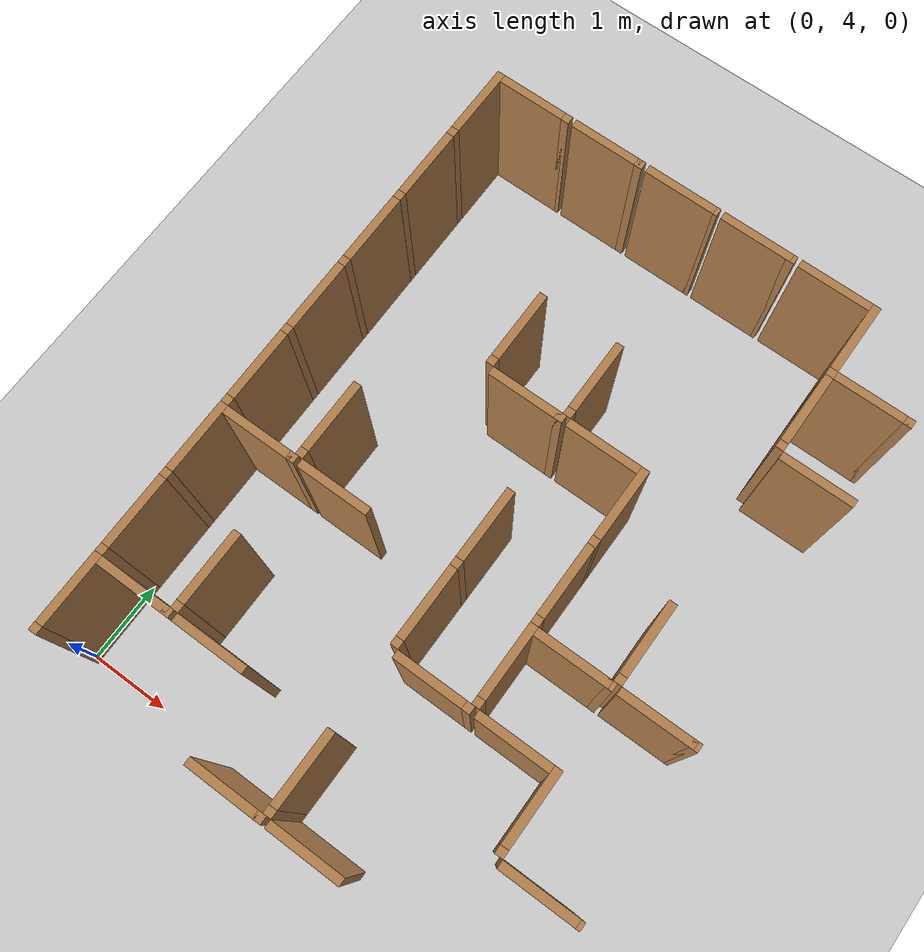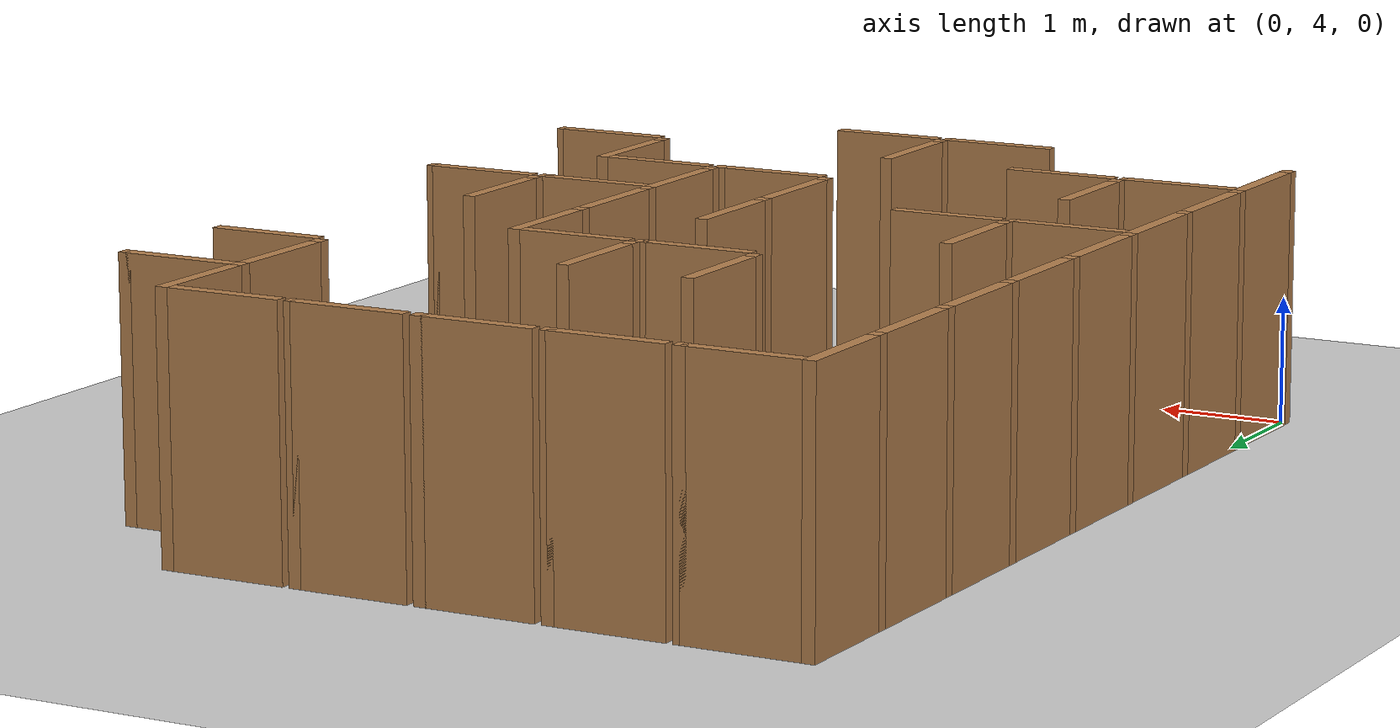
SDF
<sdf version="1.6">
 <world name="default">
  <include><uri>model://sun</uri></include>
  <model name="ground_plane">
   <static>true</static>
   <link name="link">
    <collision name="collision"><geometry><plane><size>12.0 12.0</size></plane></geometry></collision>
    <visual name="visual">
     <cast_shadows>false</cast_shadows>
     <geometry><plane><size>12.0 12.0</size></plane></geometry>
     <material>
      <script><uri>file://media/materials/scripts/gazebo.material</uri><name>Gazebo/Grey</name></script>
     </material>
    </visual>
   </link>
   <pose>6.0 6.0 0 0 0 0</pose>
  </model>
  <model name="vwall_4_0">
   <pose>0.0 4.5 1.0 0 0 0</pose>
   <link name="link">
    <collision name="collision"><geometry><box><size>0.1 0.9 2</size></box></geometry></collision>
    <visual name="visual">
     <geometry><box><size>0.1 0.9 2</size></box></geometry>
     <material>
      <script><uri>file://media/materials/scripts/gazebo.material</uri><name>Gazebo/Wood</name></script>
     </material>
    </visual>
   </link>
  </model>
  <model name="joint_0.0_-4.0">
   <pose>0.0 4.0 1.0 0 0 0</pose>
   <link name="link">
    <collision name="collision"><geometry><box><size>0.1 0.1 2</size></box></geometry></collision>
    <visual name="visual">
     <geometry><box><size>0.1 0.1 2</size></box></geometry>
     <material>
      <script><uri>file://media/materials/scripts/gazebo.material</uri><name>Gazebo/Wood</name></script>
     </material>
    </visual>
   </link>
  </model>
  <model name="vwall_4_3">
   <pose>3.0 4.5 1.0 0 0 0</pose>
   <link name="link">
    <collision name="collision"><geometry><box><size>0.1 0.9 2</size></box></geometry></collision>
    <visual name="visual">
     <geometry><box><size>0.1 0.9 2</size></box></geometry>
     <material>
      <script><uri>file://media/materials/scripts/gazebo.material</uri><name>Gazebo/Wood</name></script>
     </material>
    </visual>
   </link>
  </model>
  <model name="joint_3.0_-4.0">
   <pose>3.0 4.0 1.0 0 0 0</pose>
   <link name="link">
    <collision name="collision"><geometry><box><size>0.1 0.1 2</size></box></geometry></collision>
    <visual name="visual">
     <geometry><box><size>0.1 0.1 2</size></box></geometry>
     <material>
      <script><uri>file://media/materials/scripts/gazebo.material</uri><name>Gazebo/Wood</name></script>
     </material>
    </visual>
   </link>
  </model>
  <model name="vwall_5_0">
   <pose>0.0 5.5 1.0 0 0 0</pose>
   <link name="link">
    <collision name="collision"><geometry><box><size>0.1 0.9 2</size></box></geometry></collision>
    <visual name="visual">
     <geometry><box><size>0.1 0.9 2</size></box></geometry>
     <material>
      <script><uri>file://media/materials/scripts/gazebo.material</uri><name>Gazebo/Wood</name></script>
     </material>
    </visual>
   </link>
  </model>
  <model name="joint_0.0_-5.0">
   <pose>0.0 5.0 1.0 0 0 0</pose>
   <link name="link">
    <collision name="collision"><geometry><box><size>0.1 0.1 2</size></box></geometry></collision>
    <visual name="visual">
     <geometry><box><size>0.1 0.1 2</size></box></geometry>
     <material>
      <script><uri>file://media/materials/scripts/gazebo.material</uri><name>Gazebo/Wood</name></script>
     </material>
    </visual>
   </link>
  </model>
  <model name="vwall_5_1">
   <pose>1.0 5.5 1.0 0 0 0</pose>
   <link name="link">
    <collision name="collision"><geometry><box><size>0.1 0.9 2</size></box></geometry></collision>
    <visual name="visual">
     <geometry><box><size>0.1 0.9 2</size></box></geometry>
     <material>
      <script><uri>file://media/materials/scripts/gazebo.material</uri><name>Gazebo/Wood</name></script>
     </material>
    </visual>
   </link>
  </model>
  <model name="joint_1.0_-5.0">
   <pose>1.0 5.0 1.0 0 0 0</pose>
   <link name="link">
    <collision name="collision"><geometry><box><size>0.1 0.1 2</size></box></geometry></collision>
    <visual name="visual">
     <geometry><box><size>0.1 0.1 2</size></box></geometry>
     <material>
      <script><uri>file://media/materials/scripts/gazebo.material</uri><name>Gazebo/Wood</name></script>
     </material>
    </visual>
   </link>
  </model>
  <model name="vwall_5_5">
   <pose>5.0 5.5 1.0 0 0 0</pose>
   <link name="link">
    <collision name="collision"><geometry><box><size>0.1 0.9 2</size></box></geometry></collision>
    <visual name="visual">
     <geometry><box><size>0.1 0.9 2</size></box></geometry>
     <material>
      <script><uri>file://media/materials/scripts/gazebo.material</uri><name>Gazebo/Wood</name></script>
     </material>
    </visual>
   </link>
  </model>
  <model name="joint_5.0_-5.0">
   <pose>5.0 5.0 1.0 0 0 0</pose>
   <link name="link">
    <collision name="collision"><geometry><box><size>0.1 0.1 2</size></box></geometry></collision>
    <visual name="visual">
     <geometry><box><size>0.1 0.1 2</size></box></geometry>
     <material>
      <script><uri>file://media/materials/scripts/gazebo.material</uri><name>Gazebo/Wood</name></script>
     </material>
    </visual>
   </link>
  </model>
  <model name="vwall_6_0">
   <pose>0.0 6.5 1.0 0 0 0</pose>
   <link name="link">
    <collision name="collision"><geometry><box><size>0.1 0.9 2</size></box></geometry></collision>
    <visual name="visual">
     <geometry><box><size>0.1 0.9 2</size></box></geometry>
     <material>
      <script><uri>file://media/materials/scripts/gazebo.material</uri><name>Gazebo/Wood</name></script>
     </material>
    </visual>
   </link>
  </model>
  <model name="joint_0.0_-6.0">
   <pose>0.0 6.0 1.0 0 0 0</pose>
   <link name="link">
    <collision name="collision"><geometry><box><size>0.1 0.1 2</size></box></geometry></collision>
    <visual name="visual">
     <geometry><box><size>0.1 0.1 2</size></box></geometry>
     <material>
      <script><uri>file://media/materials/scripts/gazebo.material</uri><name>Gazebo/Wood</name></script>
     </material>
    </visual>
   </link>
  </model>
  <model name="vwall_6_3">
   <pose>3.0 6.5 1.0 0 0 0</pose>
   <link name="link">
    <collision name="collision"><geometry><box><size>0.1 0.9 2</size></box></geometry></collision>
    <visual name="visual">
     <geometry><box><size>0.1 0.9 2</size></box></geometry>
     <material>
      <script><uri>file://media/materials/scripts/gazebo.material</uri><name>Gazebo/Wood</name></script>
     </material>
    </visual>
   </link>
  </model>
  <model name="joint_3.0_-6.0">
   <pose>3.0 6.0 1.0 0 0 0</pose>
   <link name="link">
    <collision name="collision"><geometry><box><size>0.1 0.1 2</size></box></geometry></collision>
    <visual name="visual">
     <geometry><box><size>0.1 0.1 2</size></box></geometry>
     <material>
      <script><uri>file://media/materials/scripts/gazebo.material</uri><name>Gazebo/Wood</name></script>
     </material>
    </visual>
   </link>
  </model>
  <model name="vwall_6_4">
   <pose>4.0 6.5 1.0 0 0 0</pose>
   <link name="link">
    <collision name="collision"><geometry><box><size>0.1 0.9 2</size></box></geometry></collision>
    <visual name="visual">
     <geometry><box><size>0.1 0.9 2</size></box></geometry>
     <material>
      <script><uri>file://media/materials/scripts/gazebo.material</uri><name>Gazebo/Wood</name></script>
     </material>
    </visual>
   </link>
  </model>
  <model name="joint_4.0_-6.0">
   <pose>4.0 6.0 1.0 0 0 0</pose>
   <link name="link">
    <collision name="collision"><geometry><box><size>0.1 0.1 2</size></box></geometry></collision>
    <visual name="visual">
     <geometry><box><size>0.1 0.1 2</size></box></geometry>
     <material>
      <script><uri>file://media/materials/scripts/gazebo.material</uri><name>Gazebo/Wood</name></script>
     </material>
    </visual>
   </link>
  </model>
  <model name="vwall_7_0">
   <pose>0.0 7.5 1.0 0 0 0</pose>
   <link name="link">
    <collision name="collision"><geometry><box><size>0.1 0.9 2</size></box></geometry></collision>
    <visual name="visual">
     <geometry><box><size>0.1 0.9 2</size></box></geometry>
     <material>
      <script><uri>file://media/materials/scripts/gazebo.material</uri><name>Gazebo/Wood</name></script>
     </material>
    </visual>
   </link>
  </model>
  <model name="joint_0.0_-7.0">
   <pose>0.0 7.0 1.0 0 0 0</pose>
   <link name="link">
    <collision name="collision"><geometry><box><size>0.1 0.1 2</size></box></geometry></collision>
    <visual name="visual">
     <geometry><box><size>0.1 0.1 2</size></box></geometry>
     <material>
      <script><uri>file://media/materials/scripts/gazebo.material</uri><name>Gazebo/Wood</name></script>
     </material>
    </visual>
   </link>
  </model>
  <model name="vwall_7_1">
   <pose>1.0 7.5 1.0 0 0 0</pose>
   <link name="link">
    <collision name="collision"><geometry><box><size>0.1 0.9 2</size></box></geometry></collision>
    <visual name="visual">
     <geometry><box><size>0.1 0.9 2</size></box></geometry>
     <material>
      <script><uri>file://media/materials/scripts/gazebo.material</uri><name>Gazebo/Wood</name></script>
     </material>
    </visual>
   </link>
  </model>
  <model name="joint_1.0_-7.0">
   <pose>1.0 7.0 1.0 0 0 0</pose>
   <link name="link">
    <collision name="collision"><geometry><box><size>0.1 0.1 2</size></box></geometry></collision>
    <visual name="visual">
     <geometry><box><size>0.1 0.1 2</size></box></geometry>
     <material>
      <script><uri>file://media/materials/scripts/gazebo.material</uri><name>Gazebo/Wood</name></script>
     </material>
    </visual>
   </link>
  </model>
  <model name="vwall_7_3">
   <pose>3.0 7.5 1.0 0 0 0</pose>
   <link name="link">
    <collision name="collision"><geometry><box><size>0.1 0.9 2</size></box></geometry></collision>
    <visual name="visual">
     <geometry><box><size>0.1 0.9 2</size></box></geometry>
     <material>
      <script><uri>file://media/materials/scripts/gazebo.material</uri><name>Gazebo/Wood</name></script>
     </material>
    </visual>
   </link>
  </model>
  <model name="joint_3.0_-7.0">
   <pose>3.0 7.0 1.0 0 0 0</pose>
   <link name="link">
    <collision name="collision"><geometry><box><size>0.1 0.1 2</size></box></geometry></collision>
    <visual name="visual">
     <geometry><box><size>0.1 0.1 2</size></box></geometry>
     <material>
      <script><uri>file://media/materials/scripts/gazebo.material</uri><name>Gazebo/Wood</name></script>
     </material>
    </visual>
   </link>
  </model>
  <model name="vwall_7_4">
   <pose>4.0 7.5 1.0 0 0 0</pose>
   <link name="link">
    <collision name="collision"><geometry><box><size>0.1 0.9 2</size></box></geometry></collision>
    <visual name="visual">
     <geometry><box><size>0.1 0.9 2</size></box></geometry>
     <material>
      <script><uri>file://media/materials/scripts/gazebo.material</uri><name>Gazebo/Wood</name></script>
     </material>
    </visual>
   </link>
  </model>
  <model name="joint_4.0_-7.0">
   <pose>4.0 7.0 1.0 0 0 0</pose>
   <link name="link">
    <collision name="collision"><geometry><box><size>0.1 0.1 2</size></box></geometry></collision>
    <visual name="visual">
     <geometry><box><size>0.1 0.1 2</size></box></geometry>
     <material>
      <script><uri>file://media/materials/scripts/gazebo.material</uri><name>Gazebo/Wood</name></script>
     </material>
    </visual>
   </link>
  </model>
  <model name="vwall_7_5">
   <pose>5.0 7.5 1.0 0 0 0</pose>
   <link name="link">
    <collision name="collision"><geometry><box><size>0.1 0.9 2</size></box></geometry></collision>
    <visual name="visual">
     <geometry><box><size>0.1 0.9 2</size></box></geometry>
     <material>
      <script><uri>file://media/materials/scripts/gazebo.material</uri><name>Gazebo/Wood</name></script>
     </material>
    </visual>
   </link>
  </model>
  <model name="joint_5.0_-7.0">
   <pose>5.0 7.0 1.0 0 0 0</pose>
   <link name="link">
    <collision name="collision"><geometry><box><size>0.1 0.1 2</size></box></geometry></collision>
    <visual name="visual">
     <geometry><box><size>0.1 0.1 2</size></box></geometry>
     <material>
      <script><uri>file://media/materials/scripts/gazebo.material</uri><name>Gazebo/Wood</name></script>
     </material>
    </visual>
   </link>
  </model>
  <model name="vwall_8_0">
   <pose>0.0 8.5 1.0 0 0 0</pose>
   <link name="link">
    <collision name="collision"><geometry><box><size>0.1 0.9 2</size></box></geometry></collision>
    <visual name="visual">
     <geometry><box><size>0.1 0.9 2</size></box></geometry>
     <material>
      <script><uri>file://media/materials/scripts/gazebo.material</uri><name>Gazebo/Wood</name></script>
     </material>
    </visual>
   </link>
  </model>
  <model name="joint_0.0_-8.0">
   <pose>0.0 8.0 1.0 0 0 0</pose>
   <link name="link">
    <collision name="collision"><geometry><box><size>0.1 0.1 2</size></box></geometry></collision>
    <visual name="visual">
     <geometry><box><size>0.1 0.1 2</size></box></geometry>
     <material>
      <script><uri>file://media/materials/scripts/gazebo.material</uri><name>Gazebo/Wood</name></script>
     </material>
    </visual>
   </link>
  </model>
  <model name="vwall_8_4">
   <pose>4.0 8.5 1.0 0 0 0</pose>
   <link name="link">
    <collision name="collision"><geometry><box><size>0.1 0.9 2</size></box></geometry></collision>
    <visual name="visual">
     <geometry><box><size>0.1 0.9 2</size></box></geometry>
     <material>
      <script><uri>file://media/materials/scripts/gazebo.material</uri><name>Gazebo/Wood</name></script>
     </material>
    </visual>
   </link>
  </model>
  <model name="joint_4.0_-8.0">
   <pose>4.0 8.0 1.0 0 0 0</pose>
   <link name="link">
    <collision name="collision"><geometry><box><size>0.1 0.1 2</size></box></geometry></collision>
    <visual name="visual">
     <geometry><box><size>0.1 0.1 2</size></box></geometry>
     <material>
      <script><uri>file://media/materials/scripts/gazebo.material</uri><name>Gazebo/Wood</name></script>
     </material>
    </visual>
   </link>
  </model>
  <model name="vwall_9_0">
   <pose>0.0 9.5 1.0 0 0 0</pose>
   <link name="link">
    <collision name="collision"><geometry><box><size>0.1 0.9 2</size></box></geometry></collision>
    <visual name="visual">
     <geometry><box><size>0.1 0.9 2</size></box></geometry>
     <material>
      <script><uri>file://media/materials/scripts/gazebo.material</uri><name>Gazebo/Wood</name></script>
     </material>
    </visual>
   </link>
  </model>
  <model name="joint_0.0_-9.0">
   <pose>0.0 9.0 1.0 0 0 0</pose>
   <link name="link">
    <collision name="collision"><geometry><box><size>0.1 0.1 2</size></box></geometry></collision>
    <visual name="visual">
     <geometry><box><size>0.1 0.1 2</size></box></geometry>
     <material>
      <script><uri>file://media/materials/scripts/gazebo.material</uri><name>Gazebo/Wood</name></script>
     </material>
    </visual>
   </link>
  </model>
  <model name="vwall_9_2">
   <pose>2.0 9.5 1.0 0 0 0</pose>
   <link name="link">
    <collision name="collision"><geometry><box><size>0.1 0.9 2</size></box></geometry></collision>
    <visual name="visual">
     <geometry><box><size>0.1 0.9 2</size></box></geometry>
     <material>
      <script><uri>file://media/materials/scripts/gazebo.material</uri><name>Gazebo/Wood</name></script>
     </material>
    </visual>
   </link>
  </model>
  <model name="joint_2.0_-9.0">
   <pose>2.0 9.0 1.0 0 0 0</pose>
   <link name="link">
    <collision name="collision"><geometry><box><size>0.1 0.1 2</size></box></geometry></collision>
    <visual name="visual">
     <geometry><box><size>0.1 0.1 2</size></box></geometry>
     <material>
      <script><uri>file://media/materials/scripts/gazebo.material</uri><name>Gazebo/Wood</name></script>
     </material>
    </visual>
   </link>
  </model>
  <model name="vwall_9_3">
   <pose>3.0 9.5 1.0 0 0 0</pose>
   <link name="link">
    <collision name="collision"><geometry><box><size>0.1 0.9 2</size></box></geometry></collision>
    <visual name="visual">
     <geometry><box><size>0.1 0.9 2</size></box></geometry>
     <material>
      <script><uri>file://media/materials/scripts/gazebo.material</uri><name>Gazebo/Wood</name></script>
     </material>
    </visual>
   </link>
  </model>
  <model name="joint_3.0_-9.0">
   <pose>3.0 9.0 1.0 0 0 0</pose>
   <link name="link">
    <collision name="collision"><geometry><box><size>0.1 0.1 2</size></box></geometry></collision>
    <visual name="visual">
     <geometry><box><size>0.1 0.1 2</size></box></geometry>
     <material>
      <script><uri>file://media/materials/scripts/gazebo.material</uri><name>Gazebo/Wood</name></script>
     </material>
    </visual>
   </link>
  </model>
  <model name="vwall_10_0">
   <pose>0.0 10.5 1.0 0 0 0</pose>
   <link name="link">
    <collision name="collision"><geometry><box><size>0.1 0.9 2</size></box></geometry></collision>
    <visual name="visual">
     <geometry><box><size>0.1 0.9 2</size></box></geometry>
     <material>
      <script><uri>file://media/materials/scripts/gazebo.material</uri><name>Gazebo/Wood</name></script>
     </material>
    </visual>
   </link>
  </model>
  <model name="joint_0.0_-10.0">
   <pose>0.0 10.0 1.0 0 0 0</pose>
   <link name="link">
    <collision name="collision"><geometry><box><size>0.1 0.1 2</size></box></geometry></collision>
    <visual name="visual">
     <geometry><box><size>0.1 0.1 2</size></box></geometry>
     <material>
      <script><uri>file://media/materials/scripts/gazebo.material</uri><name>Gazebo/Wood</name></script>
     </material>
    </visual>
   </link>
  </model>
  <model name="vwall_10_5">
   <pose>5.0 10.5 1.0 0 0 0</pose>
   <link name="link">
    <collision name="collision"><geometry><box><size>0.1 0.9 2</size></box></geometry></collision>
    <visual name="visual">
     <geometry><box><size>0.1 0.9 2</size></box></geometry>
     <material>
      <script><uri>file://media/materials/scripts/gazebo.material</uri><name>Gazebo/Wood</name></script>
     </material>
    </visual>
   </link>
  </model>
  <model name="joint_5.0_-10.0">
   <pose>5.0 10.0 1.0 0 0 0</pose>
   <link name="link">
    <collision name="collision"><geometry><box><size>0.1 0.1 2</size></box></geometry></collision>
    <visual name="visual">
     <geometry><box><size>0.1 0.1 2</size></box></geometry>
     <material>
      <script><uri>file://media/materials/scripts/gazebo.material</uri><name>Gazebo/Wood</name></script>
     </material>
    </visual>
   </link>
  </model>
  <model name="vwall_11_0">
   <pose>0.0 11.5 1.0 0 0 0</pose>
   <link name="link">
    <collision name="collision"><geometry><box><size>0.1 0.9 2</size></box></geometry></collision>
    <visual name="visual">
     <geometry><box><size>0.1 0.9 2</size></box></geometry>
     <material>
      <script><uri>file://media/materials/scripts/gazebo.material</uri><name>Gazebo/Wood</name></script>
     </material>
    </visual>
   </link>
  </model>
  <model name="joint_0.0_-11.0">
   <pose>0.0 11.0 1.0 0 0 0</pose>
   <link name="link">
    <collision name="collision"><geometry><box><size>0.1 0.1 2</size></box></geometry></collision>
    <visual name="visual">
     <geometry><box><size>0.1 0.1 2</size></box></geometry>
     <material>
      <script><uri>file://media/materials/scripts/gazebo.material</uri><name>Gazebo/Wood</name></script>
     </material>
    </visual>
   </link>
  </model>
  <model name="vwall_11_5">
   <pose>5.0 11.5 1.0 0 0 0</pose>
   <link name="link">
    <collision name="collision"><geometry><box><size>0.1 0.9 2</size></box></geometry></collision>
    <visual name="visual">
     <geometry><box><size>0.1 0.9 2</size></box></geometry>
     <material>
      <script><uri>file://media/materials/scripts/gazebo.material</uri><name>Gazebo/Wood</name></script>
     </material>
    </visual>
   </link>
  </model>
  <model name="joint_5.0_-11.0">
   <pose>5.0 11.0 1.0 0 0 0</pose>
   <link name="link">
    <collision name="collision"><geometry><box><size>0.1 0.1 2</size></box></geometry></collision>
    <visual name="visual">
     <geometry><box><size>0.1 0.1 2</size></box></geometry>
     <material>
      <script><uri>file://media/materials/scripts/gazebo.material</uri><name>Gazebo/Wood</name></script>
     </material>
    </visual>
   </link>
  </model>
  <model name="hwall_3_2">
   <pose>2.5 3.9 1.0 0 0 0</pose>
   <link name="link">
    <collision name="collision"><geometry><box><size>0.9 0.1 2</size></box></geometry></collision>
    <visual name="visual">
     <geometry><box><size>0.9 0.1 2</size></box></geometry>
     <material>
      <script><uri>file://media/materials/scripts/gazebo.material</uri><name>Gazebo/Wood</name></script>
     </material>
    </visual>
   </link>
  </model>
  <model name="joint_2.95_-3.9">
   <pose>2.95 3.9 1.0 0 0 0</pose>
   <link name="link">
    <collision name="collision"><geometry><box><size>0.1 0.1 2</size></box></geometry></collision>
    <visual name="visual">
     <geometry><box><size>0.1 0.1 2</size></box></geometry>
     <material>
      <script><uri>file://media/materials/scripts/gazebo.material</uri><name>Gazebo/Wood</name></script>
     </material>
    </visual>
   </link>
  </model>
  <model name="hwall_3_3">
   <pose>3.5 3.9 1.0 0 0 0</pose>
   <link name="link">
    <collision name="collision"><geometry><box><size>0.9 0.1 2</size></box></geometry></collision>
    <visual name="visual">
     <geometry><box><size>0.9 0.1 2</size></box></geometry>
     <material>
      <script><uri>file://media/materials/scripts/gazebo.material</uri><name>Gazebo/Wood</name></script>
     </material>
    </visual>
   </link>
  </model>
  <model name="hwall_4_0">
   <pose>0.5 4.9 1.0 0 0 0</pose>
   <link name="link">
    <collision name="collision"><geometry><box><size>0.9 0.1 2</size></box></geometry></collision>
    <visual name="visual">
     <geometry><box><size>0.9 0.1 2</size></box></geometry>
     <material>
      <script><uri>file://media/materials/scripts/gazebo.material</uri><name>Gazebo/Wood</name></script>
     </material>
    </visual>
   </link>
  </model>
  <model name="joint_0.95_-4.9">
   <pose>0.95 4.9 1.0 0 0 0</pose>
   <link name="link">
    <collision name="collision"><geometry><box><size>0.1 0.1 2</size></box></geometry></collision>
    <visual name="visual">
     <geometry><box><size>0.1 0.1 2</size></box></geometry>
     <material>
      <script><uri>file://media/materials/scripts/gazebo.material</uri><name>Gazebo/Wood</name></script>
     </material>
    </visual>
   </link>
  </model>
  <model name="hwall_4_1">
   <pose>1.5 4.9 1.0 0 0 0</pose>
   <link name="link">
    <collision name="collision"><geometry><box><size>0.9 0.1 2</size></box></geometry></collision>
    <visual name="visual">
     <geometry><box><size>0.9 0.1 2</size></box></geometry>
     <material>
      <script><uri>file://media/materials/scripts/gazebo.material</uri><name>Gazebo/Wood</name></script>
     </material>
    </visual>
   </link>
  </model>
  <model name="hwall_4_5">
   <pose>5.5 4.9 1.0 0 0 0</pose>
   <link name="link">
    <collision name="collision"><geometry><box><size>0.9 0.1 2</size></box></geometry></collision>
    <visual name="visual">
     <geometry><box><size>0.9 0.1 2</size></box></geometry>
     <material>
      <script><uri>file://media/materials/scripts/gazebo.material</uri><name>Gazebo/Wood</name></script>
     </material>
    </visual>
   </link>
  </model>
  <model name="joint_5.95_-4.9">
   <pose>5.95 4.9 1.0 0 0 0</pose>
   <link name="link">
    <collision name="collision"><geometry><box><size>0.1 0.1 2</size></box></geometry></collision>
    <visual name="visual">
     <geometry><box><size>0.1 0.1 2</size></box></geometry>
     <material>
      <script><uri>file://media/materials/scripts/gazebo.material</uri><name>Gazebo/Wood</name></script>
     </material>
    </visual>
   </link>
  </model>
  <model name="hwall_5_3">
   <pose>3.5 5.9 1.0 0 0 0</pose>
   <link name="link">
    <collision name="collision"><geometry><box><size>0.9 0.1 2</size></box></geometry></collision>
    <visual name="visual">
     <geometry><box><size>0.9 0.1 2</size></box></geometry>
     <material>
      <script><uri>file://media/materials/scripts/gazebo.material</uri><name>Gazebo/Wood</name></script>
     </material>
    </visual>
   </link>
  </model>
  <model name="joint_3.95_-5.9">
   <pose>3.95 5.9 1.0 0 0 0</pose>
   <link name="link">
    <collision name="collision"><geometry><box><size>0.1 0.1 2</size></box></geometry></collision>
    <visual name="visual">
     <geometry><box><size>0.1 0.1 2</size></box></geometry>
     <material>
      <script><uri>file://media/materials/scripts/gazebo.material</uri><name>Gazebo/Wood</name></script>
     </material>
    </visual>
   </link>
  </model>
  <model name="hwall_5_4">
   <pose>4.5 5.9 1.0 0 0 0</pose>
   <link name="link">
    <collision name="collision"><geometry><box><size>0.9 0.1 2</size></box></geometry></collision>
    <visual name="visual">
     <geometry><box><size>0.9 0.1 2</size></box></geometry>
     <material>
      <script><uri>file://media/materials/scripts/gazebo.material</uri><name>Gazebo/Wood</name></script>
     </material>
    </visual>
   </link>
  </model>
  <model name="hwall_6_0">
   <pose>0.5 6.9 1.0 0 0 0</pose>
   <link name="link">
    <collision name="collision"><geometry><box><size>0.9 0.1 2</size></box></geometry></collision>
    <visual name="visual">
     <geometry><box><size>0.9 0.1 2</size></box></geometry>
     <material>
      <script><uri>file://media/materials/scripts/gazebo.material</uri><name>Gazebo/Wood</name></script>
     </material>
    </visual>
   </link>
  </model>
  <model name="joint_0.95_-6.9">
   <pose>0.95 6.9 1.0 0 0 0</pose>
   <link name="link">
    <collision name="collision"><geometry><box><size>0.1 0.1 2</size></box></geometry></collision>
    <visual name="visual">
     <geometry><box><size>0.1 0.1 2</size></box></geometry>
     <material>
      <script><uri>file://media/materials/scripts/gazebo.material</uri><name>Gazebo/Wood</name></script>
     </material>
    </visual>
   </link>
  </model>
  <model name="hwall_6_1">
   <pose>1.5 6.9 1.0 0 0 0</pose>
   <link name="link">
    <collision name="collision"><geometry><box><size>0.9 0.1 2</size></box></geometry></collision>
    <visual name="visual">
     <geometry><box><size>0.9 0.1 2</size></box></geometry>
     <material>
      <script><uri>file://media/materials/scripts/gazebo.material</uri><name>Gazebo/Wood</name></script>
     </material>
    </visual>
   </link>
  </model>
  <model name="hwall_6_4">
   <pose>4.5 6.9 1.0 0 0 0</pose>
   <link name="link">
    <collision name="collision"><geometry><box><size>0.9 0.1 2</size></box></geometry></collision>
    <visual name="visual">
     <geometry><box><size>0.9 0.1 2</size></box></geometry>
     <material>
      <script><uri>file://media/materials/scripts/gazebo.material</uri><name>Gazebo/Wood</name></script>
     </material>
    </visual>
   </link>
  </model>
  <model name="joint_4.95_-6.9">
   <pose>4.95 6.9 1.0 0 0 0</pose>
   <link name="link">
    <collision name="collision"><geometry><box><size>0.1 0.1 2</size></box></geometry></collision>
    <visual name="visual">
     <geometry><box><size>0.1 0.1 2</size></box></geometry>
     <material>
      <script><uri>file://media/materials/scripts/gazebo.material</uri><name>Gazebo/Wood</name></script>
     </material>
    </visual>
   </link>
  </model>
  <model name="hwall_6_5">
   <pose>5.5 6.9 1.0 0 0 0</pose>
   <link name="link">
    <collision name="collision"><geometry><box><size>0.9 0.1 2</size></box></geometry></collision>
    <visual name="visual">
     <geometry><box><size>0.9 0.1 2</size></box></geometry>
     <material>
      <script><uri>file://media/materials/scripts/gazebo.material</uri><name>Gazebo/Wood</name></script>
     </material>
    </visual>
   </link>
  </model>
  <model name="joint_5.95_-6.9">
   <pose>5.95 6.9 1.0 0 0 0</pose>
   <link name="link">
    <collision name="collision"><geometry><box><size>0.1 0.1 2</size></box></geometry></collision>
    <visual name="visual">
     <geometry><box><size>0.1 0.1 2</size></box></geometry>
     <material>
      <script><uri>file://media/materials/scripts/gazebo.material</uri><name>Gazebo/Wood</name></script>
     </material>
    </visual>
   </link>
  </model>
  <model name="hwall_8_2">
   <pose>2.5 8.9 1.0 0 0 0</pose>
   <link name="link">
    <collision name="collision"><geometry><box><size>0.9 0.1 2</size></box></geometry></collision>
    <visual name="visual">
     <geometry><box><size>0.9 0.1 2</size></box></geometry>
     <material>
      <script><uri>file://media/materials/scripts/gazebo.material</uri><name>Gazebo/Wood</name></script>
     </material>
    </visual>
   </link>
  </model>
  <model name="joint_2.95_-8.9">
   <pose>2.95 8.9 1.0 0 0 0</pose>
   <link name="link">
    <collision name="collision"><geometry><box><size>0.1 0.1 2</size></box></geometry></collision>
    <visual name="visual">
     <geometry><box><size>0.1 0.1 2</size></box></geometry>
     <material>
      <script><uri>file://media/materials/scripts/gazebo.material</uri><name>Gazebo/Wood</name></script>
     </material>
    </visual>
   </link>
  </model>
  <model name="hwall_8_3">
   <pose>3.5 8.9 1.0 0 0 0</pose>
   <link name="link">
    <collision name="collision"><geometry><box><size>0.9 0.1 2</size></box></geometry></collision>
    <visual name="visual">
     <geometry><box><size>0.9 0.1 2</size></box></geometry>
     <material>
      <script><uri>file://media/materials/scripts/gazebo.material</uri><name>Gazebo/Wood</name></script>
     </material>
    </visual>
   </link>
  </model>
  <model name="hwall_9_5">
   <pose>5.5 9.9 1.0 0 0 0</pose>
   <link name="link">
    <collision name="collision"><geometry><box><size>0.9 0.1 2</size></box></geometry></collision>
    <visual name="visual">
     <geometry><box><size>0.9 0.1 2</size></box></geometry>
     <material>
      <script><uri>file://media/materials/scripts/gazebo.material</uri><name>Gazebo/Wood</name></script>
     </material>
    </visual>
   </link>
  </model>
  <model name="hwall_11_0">
   <pose>0.5 11.9 1.0 0 0 0</pose>
   <link name="link">
    <collision name="collision"><geometry><box><size>0.9 0.1 2</size></box></geometry></collision>
    <visual name="visual">
     <geometry><box><size>0.9 0.1 2</size></box></geometry>
     <material>
      <script><uri>file://media/materials/scripts/gazebo.material</uri><name>Gazebo/Wood</name></script>
     </material>
    </visual>
   </link>
  </model>
  <model name="joint_0.95_-11.9">
   <pose>0.95 11.9 1.0 0 0 0</pose>
   <link name="link">
    <collision name="collision"><geometry><box><size>0.1 0.1 2</size></box></geometry></collision>
    <visual name="visual">
     <geometry><box><size>0.1 0.1 2</size></box></geometry>
     <material>
      <script><uri>file://media/materials/scripts/gazebo.material</uri><name>Gazebo/Wood</name></script>
     </material>
    </visual>
   </link>
  </model>
  <model name="hwall_11_1">
   <pose>1.5 11.9 1.0 0 0 0</pose>
   <link name="link">
    <collision name="collision"><geometry><box><size>0.9 0.1 2</size></box></geometry></collision>
    <visual name="visual">
     <geometry><box><size>0.9 0.1 2</size></box></geometry>
     <material>
      <script><uri>file://media/materials/scripts/gazebo.material</uri><name>Gazebo/Wood</name></script>
     </material>
    </visual>
   </link>
  </model>
  <model name="joint_1.95_-11.9">
   <pose>1.95 11.9 1.0 0 0 0</pose>
   <link name="link">
    <collision name="collision"><geometry><box><size>0.1 0.1 2</size></box></geometry></collision>
    <visual name="visual">
     <geometry><box><size>0.1 0.1 2</size></box></geometry>
     <material>
      <script><uri>file://media/materials/scripts/gazebo.material</uri><name>Gazebo/Wood</name></script>
     </material>
    </visual>
   </link>
  </model>
  <model name="hwall_11_2">
   <pose>2.5 11.9 1.0 0 0 0</pose>
   <link name="link">
    <collision name="collision"><geometry><box><size>0.9 0.1 2</size></box></geometry></collision>
    <visual name="visual">
     <geometry><box><size>0.9 0.1 2</size></box></geometry>
     <material>
      <script><uri>file://media/materials/scripts/gazebo.material</uri><name>Gazebo/Wood</name></script>
     </material>
    </visual>
   </link>
  </model>
  <model name="joint_2.95_-11.9">
   <pose>2.95 11.9 1.0 0 0 0</pose>
   <link name="link">
    <collision name="collision"><geometry><box><size>0.1 0.1 2</size></box></geometry></collision>
    <visual name="visual">
     <geometry><box><size>0.1 0.1 2</size></box></geometry>
     <material>
      <script><uri>file://media/materials/scripts/gazebo.material</uri><name>Gazebo/Wood</name></script>
     </material>
    </visual>
   </link>
  </model>
  <model name="hwall_11_3">
   <pose>3.5 11.9 1.0 0 0 0</pose>
   <link name="link">
    <collision name="collision"><geometry><box><size>0.9 0.1 2</size></box></geometry></collision>
    <visual name="visual">
     <geometry><box><size>0.9 0.1 2</size></box></geometry>
     <material>
      <script><uri>file://media/materials/scripts/gazebo.material</uri><name>Gazebo/Wood</name></script>
     </material>
    </visual>
   </link>
  </model>
  <model name="joint_3.95_-11.9">
   <pose>3.95 11.9 1.0 0 0 0</pose>
   <link name="link">
    <collision name="collision"><geometry><box><size>0.1 0.1 2</size></box></geometry></collision>
    <visual name="visual">
     <geometry><box><size>0.1 0.1 2</size></box></geometry>
     <material>
      <script><uri>file://media/materials/scripts/gazebo.material</uri><name>Gazebo/Wood</name></script>
     </material>
    </visual>
   </link>
  </model>
  <model name="hwall_11_4">
   <pose>4.5 11.9 1.0 0 0 0</pose>
   <link name="link">
    <collision name="collision"><geometry><box><size>0.9 0.1 2</size></box></geometry></collision>
    <visual name="visual">
     <geometry><box><size>0.9 0.1 2</size></box></geometry>
     <material>
      <script><uri>file://media/materials/scripts/gazebo.material</uri><name>Gazebo/Wood</name></script>
     </material>
    </visual>
   </link>
  </model>
  <model name="hwall_11_5">
   <pose>5.5 11.0 1.0 0 0 0</pose>
   <link name="link">
    <collision name="collision"><geometry><box><size>0.9 0.1 2</size></box></geometry></collision>
    <visual name="visual">
     <geometry><box><size>0.9 0.1 2</size></box></geometry>
     <material>
      <script><uri>file://media/materials/scripts/gazebo.material</uri><name>Gazebo/Wood</name></script>
     </material>
    </visual>
   </link>
  </model>
  <model name="joint_5.95_-11.0">
   <pose>5.95 11.0 1.0 0 0 0</pose>
   <link name="link">
    <collision name="collision"><geometry><box><size>0.1 0.1 2</size></box></geometry></collision>
    <visual name="visual">
     <geometry><box><size>0.1 0.1 2</size></box></geometry>
     <material>
      <script><uri>file://media/materials/scripts/gazebo.material</uri><name>Gazebo/Wood</name></script>
     </material>
    </visual>
   </link>
  </model>
 </world>
</sdf>
